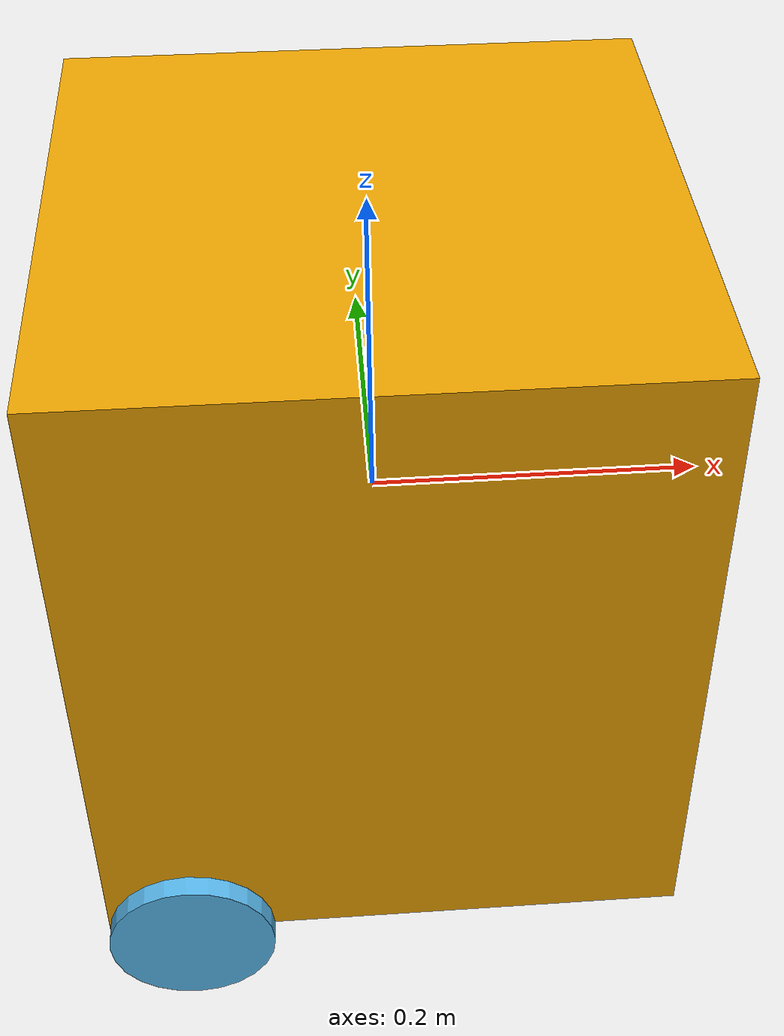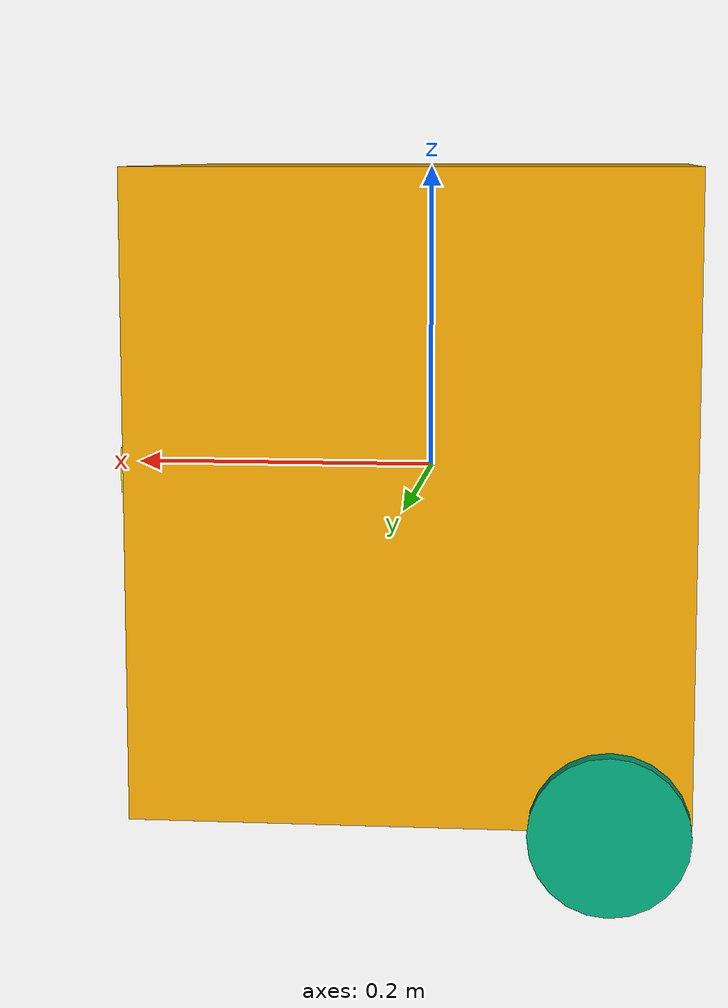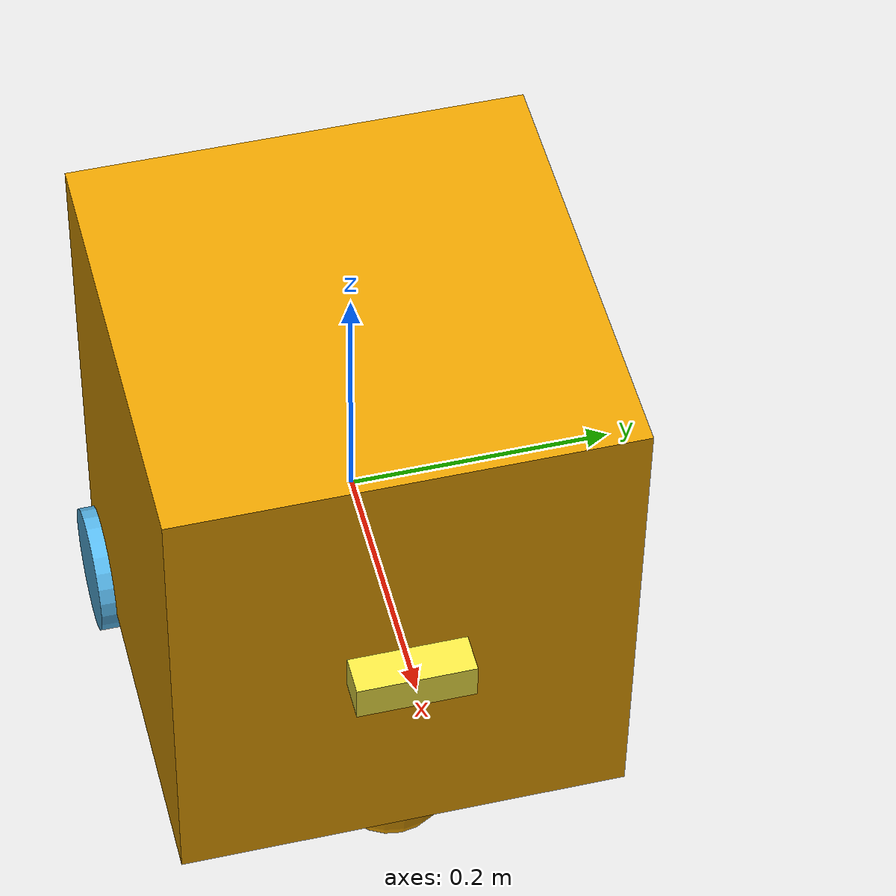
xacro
<?xml version="1.0" encoding="UTF-8"?>
<robot name="prbot" xmlns:xacro="http://www.ros.org/wiki/xacro">
  <xacro:include filename="$(find prbot_description)/urdf/robot.gazebo" />

  <xacro:property name="wheel_rad" value="0.05"/>
  <xacro:property name="wheel_len" value="0.025"/>
  <xacro:property name="body_x" value="0.3472"/>
  <xacro:property name="body_y" value="0.34852"/>
  <xacro:property name="body_z" value="0.40171"/>
  <xacro:property name="cam_len" value="0.03"/>
  <!-- square base for the prbot -->
  <link name="square_base">
    <!-- configure the phisics of the link -->
    <inertial>
      <mass value="5"/>
      <inertia  ixx="0.166667" ixy="0" ixz="0" iyy="0.166667" iyz="0" izz="0.166667"/>
    </inertial>
    <!-- configure the collition box for that link-->
    <collision name="base_collision">
      <geometry>
        <box size="${body_x} ${body_y} ${body_z}"/>
      </geometry>
    </collision>

    <!-- configure the visual for the link -->
    <visual name="base_visual">
      <geometry>
        <box size="${body_x} ${body_y} ${body_z}"/>
      </geometry>
    </visual>

    <!-- inside this link there is gonna be the caster_wheel-->
    <collision name="caster_collision">
      <origin xyz="${0.5*body_x-wheel_rad} 0 ${-body_z/2}" rpy="0 0 0"/>
      <geometry>
        <sphere radius="${wheel_rad}"/>
      </geometry>
    </collision>

    <visual name="caster_visual">
      <origin xyz="${0.5*body_x-wheel_rad} 0 ${-body_z/2}" rpy="0 0 0"/>
      <geometry>
        <sphere radius="${wheel_rad}"/>
      </geometry>
    </visual>

  </link>

  <!-- ################# right wheel #############################-->
  <link name="right_wheel">
    <pose xyz="${-0.5*body_x+wheel_rad} ${-body_y/2} ${-body_z/2}" rpy="-1.5707 0 0"/>
    <!-- configure the inertia of the wheel-->
    <inertial>
      <mass value="0.15"/>
      <inertia ixx="0.145833" ixy="0" ixz="0" iyy="0.145833" iyz="0" izz="0.125"/>
    </inertial>
    <!-- configure the collision box of the link -->
    <collision name="right_wheel_collision">
      <origin rpy= "-1.5707 0 0" xyz="0 0 0"/>
      <geometry>
        <cylinder radius="${wheel_rad}" length="${wheel_len}"/>
      </geometry>
    </collision>
    <!-- configure the visual for the link -->
    <visual name="right_wheel_visual">
      <origin rpy= "-1.5707 0 0" xyz="0 0 0"/>
      <geometry>
        <cylinder radius="${wheel_rad}" length="${wheel_len}"/>
      </geometry>
    </visual>
  </link>

  <!--##################### left wheel #########################-->
  <link name="left_wheel">
    <pose xyz="${-0.5*body_x+wheel_rad} ${body_y/2} ${-body_z/2}" rpy="-1.5707 0 0"/>
    <!-- configure the inertia of the wheel-->
    <inertial>
      <mass value="0.15"/>
      <inertia ixx="0.145833" ixy="0" ixz="0" iyy="0.145833" iyz="0" izz="0.125"/>
    </inertial>
    <!-- configure the collision box of the link -->
    <collision name="left_wheel_collision">
      <origin rpy= "-1.5707 0 0" xyz="0 0 0"/>
      <geometry>
        <cylinder radius="${wheel_rad}" length="${wheel_len}"/>
      </geometry>
    </collision>
    <!-- configure the visual for the link -->
    <visual name="left_wheel_visual">
      <origin rpy= "-1.5707 0 0" xyz="0 0 0"/>
      <geometry>
        <cylinder radius="${wheel_rad}" length="${wheel_len}"/>
      </geometry>
    </visual>
  </link>

  <!--##################### camera link #########################-->
  <link name="camera_box">
    <!-- configure the phisics of the link -->
    <inertial>
      <mass value="0.1"/>
      <inertia ixx="1.5e-05" ixy="0" ixz="0" iyy="1.5e-05" iyz="0" izz="1.5e-05"/>
    </inertial>

    <!-- configure the collition box for the link-->
    <collision name="cam_collision">
      <geometry>
        <box size="${cam_len} ${3*cam_len} ${cam_len}"/>
      </geometry>
    </collision>

    <!-- configure the visual for the link -->
    <visual name="cam_visual">
      <geometry>
        <box size="${cam_len} ${3*cam_len} ${cam_len}"/>
      </geometry>
      </visual>
  </link>

  <!--##################### joints #########################-->
  <!-- joints for the two wheels -->
  <joint name="base2rightwheel" type="continuous">
    <origin xyz="${-body_x/2 + wheel_rad} ${-body_y/2} ${-body_z/2}" rpy= "0 0 0"/>
    <parent link="square_base"/>
    <child link="right_wheel"/>
    <axis xyz="0 1 0"/>
    <limit effort="10" velocity="6"/>
    <joint_properties damping="0.0" friction="0.001"/>
  </joint>

  <joint name="base2leftwheel" type="continuous">
    <origin xyz="${-body_x/2 + wheel_rad} ${body_y/2} ${-body_z/2}" rpy= "0 0 0"/>
    <parent link="square_base"/>
    <child link="left_wheel"/>
    <axis xyz="0 1 0"/>
    <limit effort="10" velocity="6"/>
    <joint_properties damping="0.0" friction="0.001"/>
  </joint>

    <!-- joint to attach the camera link to the body -->
  <joint name="base2camera_box" type="fixed">
    <origin rpy= "0 0 0" xyz="${body_x/2+cam_len/2} 0 0"/>
    <parent link="square_base"/>
    <child link="camera_box"/>
  </joint>

</robot>
